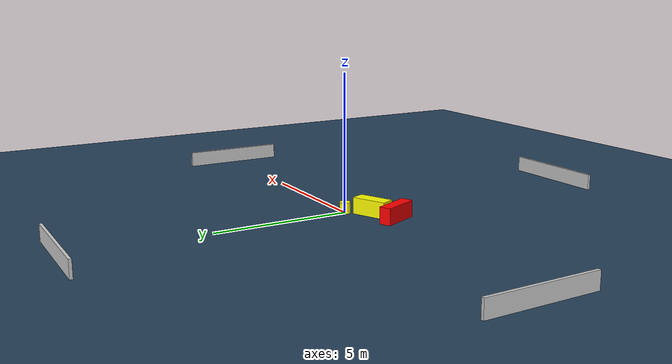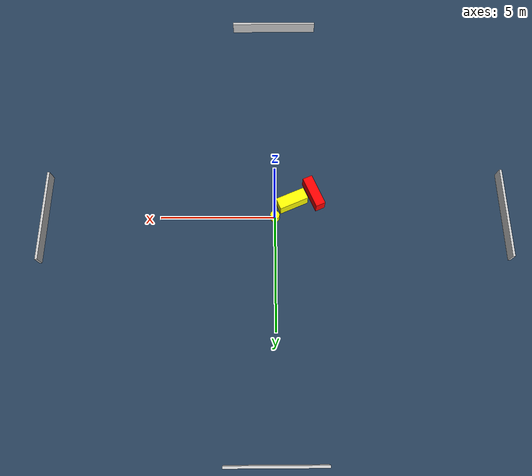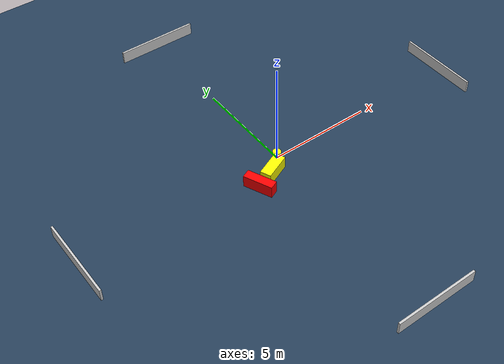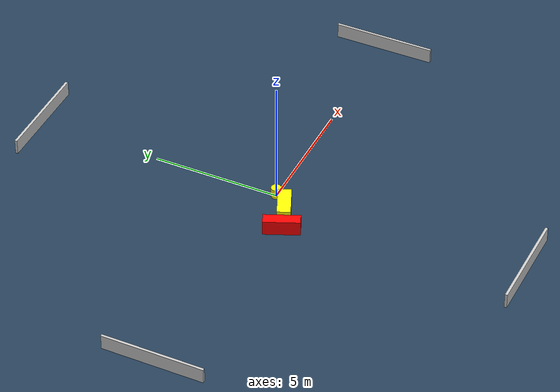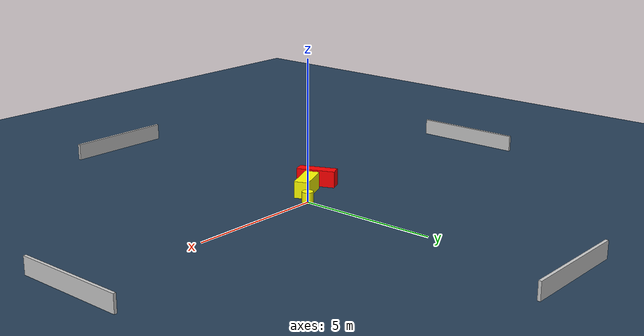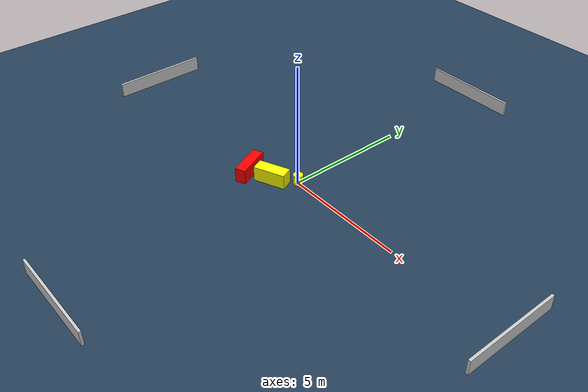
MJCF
<?xml version="1.0" ?>
<mujoco model="generated_environment">
  <option timestep="0.01" integrator="RK4" cone="elliptic"/>
  <default>
    <geom density="1"/>
  </default>
  <asset>
    <texture builtin="gradient" height="3072" name="skybox" rgb1="0.3 0.5 0.7" rgb2="0 0 0" type="skybox" width="512"/>
    <texture builtin="checker" height="300" name="groundplane" rgb1="0.2 0.3 0.4" rgb2="0.1 0.2 0.3" type="2d" width="300"/>
    <material name="groundplane" reflectance="0.2" texrepeat="5 5" texture="groundplane"/>
  </asset>
  <worldbody>
    <light dir="0 0 -1" directional="true" pos="0 0 1.5"/>
    <geom condim="3" friction="0.5 0.005 0.001" material="groundplane" name="floor" pos="0 0 0" size="0 0 0.05" type="plane"/>
    <body name="walls">
      <geom name="wall_1" condim="4" pos="-10.0 0.0 0.3" rgba="0.800000011920929 0.800000011920929 0.800000011920929 1.0" size="0.05 2.0 0.3" type="box"/>
      <geom name="wall_2" condim="4" pos="10.0 0.0 0.3" rgba="0.800000011920929 0.800000011920929 0.800000011920929 1.0" size="0.05 2.0 0.3" type="box"/>
      <geom name="wall_3" condim="4" pos="0.0 -10.0 0.3" rgba="0.800000011920929 0.800000011920929 0.800000011920929 1.0" size="2.0 0.05 0.3" type="box"/>
      <geom name="wall_4" condim="4" pos="0.0 10.0 0.3" rgba="0.800000011920929 0.800000011920929 0.800000011920929 1.0" size="2.0 0.05 0.3" type="box"/>
    </body>
    <body name="robot">
      <joint name="joint_x" type="slide" pos="0 0 0" axis="1 0 0"/>
      <joint name="joint_y" type="slide" pos="0 0 0" axis="0 1 0"/>
      <geom name="robot" type="cylinder" pos="0.0 0.0 0.2" size="0.2 0.2 0.0" mass="5.0" friction="1.0 0.005 0.0001" condim="4" rgba="1.0 1.0 0.0 1.0"/>
    </body>
    <body name="obstacle_1_movable">
      <geom name="obstacle_1_movable" condim="4" pos="-0.7454494102260264 -0.6833153300927884 0.3" euler="0 0 203.23751938627655" friction="0.0 0.005 0.001" rgba="1.0 1.0 0.0 1.0" size="0.6491427578891088 0.25854393110015195 0.3" type="box" mass="0.1"/>
      <joint type="free"/>
    </body>
    <body name="obstacle_2_static">
      <geom name="obstacle_2_static" condim="4" pos="-1.710709788703477 -1.034970664815372 0.3" euler="0 0 113.24544333884376" friction="0.0 0.005 0.001" rgba="1.0 0.0 0.0 1.0" size="0.7047831699601759 0.21526314636213528 0.3" type="box"/>
    </body>
  </worldbody>
  <actuator>
    <motor name="actuator_x" joint="joint_x" gear="1" ctrlrange="-1 1"/>
    <motor name="actuator_y" joint="joint_y" gear="1" ctrlrange="-1 1"/>
  </actuator>
</mujoco>
